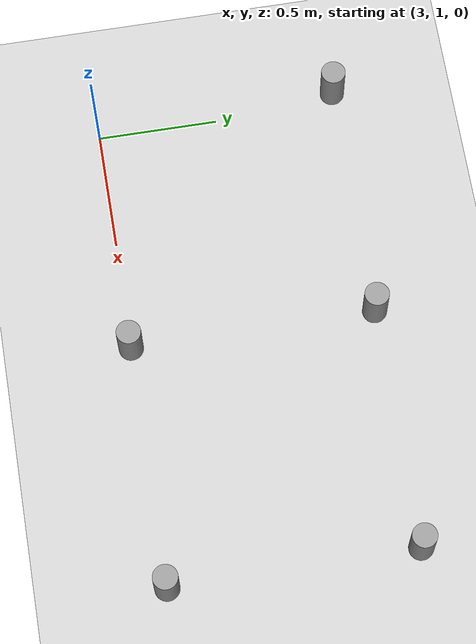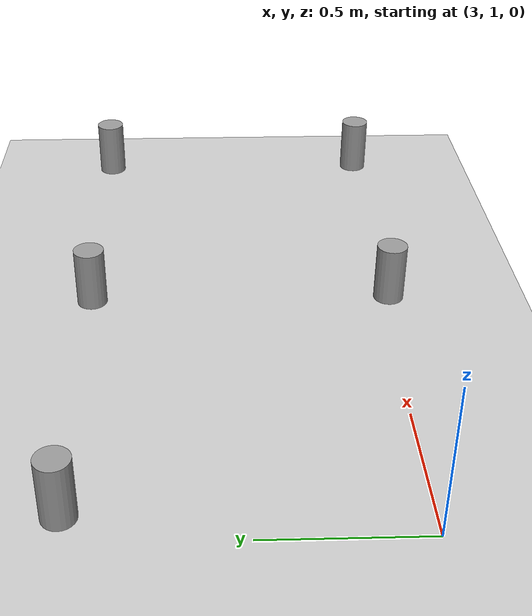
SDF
<sdf version="1.6">
 <world name="default">
  <model name="ground_plane">
   <static>1</static>
   <link name="link">
    <collision name="collision">
     <geometry><plane><normal>0 0 1</normal><size>100 100</size></plane></geometry>
     <surface><friction><ode><mu>100</mu><mu2>50</mu2></ode></friction></surface>
    </collision>
    <visual name="visual">
     <cast_shadows>0</cast_shadows>
     <geometry><plane><normal>0 0 1</normal><size>100 100</size></plane></geometry>
     <material>
      <script><uri>file://media/materials/scripts/gazebo.material</uri><name>Gazebo/Grey</name></script>
     </material>
    </visual>
   </link>
  </model>
  <model name="agent4">
   <link name="link_0">
    <inertial>
     <mass>1</mass>
     <inertia><ixx>0</ixx><ixy>0</ixy><ixz>0</ixz><iyy>0</iyy><iyz>0</iyz><izz>0</izz></inertia>
    </inertial>
    <visual name="visual">
     <geometry><cylinder><radius>0.05</radius><length>0.2</length></cylinder></geometry>
     <material>
      <lighting>1</lighting>
      <script><uri>file://media/materials/scripts/gazebo.material</uri><name>Gazebo/Grey</name></script>
     </material>
    </visual>
    <collision name="collision">
     <geometry><cylinder><radius>0.05</radius><length>0.2</length></cylinder></geometry>
     <surface>
      <friction>
       <ode><mu>0</mu><mu2>1</mu2><fdir1>0 0 0</fdir1><slip1>0</slip1><slip2>0</slip2></ode>
       <torsional>
        <coefficient>1</coefficient>
        <patch_radius>0</patch_radius>
        <surface_radius>0</surface_radius>
        <use_patch_radius>1</use_patch_radius>
        <ode><slip>0</slip></ode>
       </torsional>
      </friction>
      <bounce><restitution_coefficient>0</restitution_coefficient><threshold>1e+06</threshold></bounce>
      <contact>
       <collide_without_contact>0</collide_without_contact>
       <collide_without_contact_bitmask>1</collide_without_contact_bitmask>
       <collide_bitmask>1</collide_bitmask>
       <ode>
        <soft_cfm>0</soft_cfm>
        <soft_erp>0.2</soft_erp>
        <kp>1e+13</kp>
        <kd>1</kd>
        <max_vel>0.01</max_vel>
        <min_depth>0</min_depth>
       </ode>
       <bullet>
        <split_impulse>1</split_impulse>
        <split_impulse_penetration_threshold>-0.01</split_impulse_penetration_threshold>
        <soft_cfm>0</soft_cfm>
        <soft_erp>0.2</soft_erp>
        <kp>1e+13</kp>
        <kd>1</kd>
       </bullet>
      </contact>
     </surface>
    </collision>
   </link>
   <static>0</static>
   <plugin name="multi_obs" filename="libmulti_obs.so"/>
   <pose>4 1 0.19999 -0 -0 -0</pose>
  </model>
  <model name="agent5">
   <link name="link_0">
    <inertial>
     <mass>1</mass>
     <inertia><ixx>0</ixx><ixy>0</ixy><ixz>0</ixz><iyy>0</iyy><iyz>0</iyz><izz>0</izz></inertia>
    </inertial>
    <visual name="visual">
     <geometry><cylinder><radius>0.05</radius><length>0.2</length></cylinder></geometry>
     <material>
      <lighting>1</lighting>
      <script><uri>file://media/materials/scripts/gazebo.material</uri><name>Gazebo/Grey</name></script>
     </material>
    </visual>
    <collision name="collision">
     <geometry><cylinder><radius>0.05</radius><length>0.2</length></cylinder></geometry>
     <surface>
      <friction>
       <ode><mu>0</mu><mu2>1</mu2><fdir1>0 0 0</fdir1><slip1>0</slip1><slip2>0</slip2></ode>
       <torsional>
        <coefficient>1</coefficient>
        <patch_radius>0</patch_radius>
        <surface_radius>0</surface_radius>
        <use_patch_radius>1</use_patch_radius>
        <ode><slip>0</slip></ode>
       </torsional>
      </friction>
      <bounce><restitution_coefficient>0</restitution_coefficient><threshold>1e+06</threshold></bounce>
      <contact>
       <collide_without_contact>0</collide_without_contact>
       <collide_without_contact_bitmask>1</collide_without_contact_bitmask>
       <collide_bitmask>1</collide_bitmask>
       <ode>
        <soft_cfm>0</soft_cfm>
        <soft_erp>0.2</soft_erp>
        <kp>1e+13</kp>
        <kd>1</kd>
        <max_vel>0.01</max_vel>
        <min_depth>0</min_depth>
       </ode>
       <bullet>
        <split_impulse>1</split_impulse>
        <split_impulse_penetration_threshold>-0.01</split_impulse_penetration_threshold>
        <soft_cfm>0</soft_cfm>
        <soft_erp>0.2</soft_erp>
        <kp>1e+13</kp>
        <kd>1</kd>
       </bullet>
      </contact>
     </surface>
    </collision>
   </link>
   <static>0</static>
   <plugin name="multi_obs" filename="libmulti_obs.so"/>
   <pose>5 1 0.19999 -0 -0 -0</pose>
  </model>
  <model name="agent13">
   <link name="link_0">
    <inertial>
     <mass>1</mass>
     <inertia><ixx>0</ixx><ixy>0</ixy><ixz>0</ixz><iyy>0</iyy><iyz>0</iyz><izz>0</izz></inertia>
    </inertial>
    <visual name="visual">
     <geometry><cylinder><radius>0.05</radius><length>0.2</length></cylinder></geometry>
     <material>
      <lighting>1</lighting>
      <script><uri>file://media/materials/scripts/gazebo.material</uri><name>Gazebo/Grey</name></script>
     </material>
    </visual>
    <collision name="collision">
     <geometry><cylinder><radius>0.05</radius><length>0.2</length></cylinder></geometry>
     <surface>
      <friction>
       <ode><mu>0</mu><mu2>1</mu2><fdir1>0 0 0</fdir1><slip1>0</slip1><slip2>0</slip2></ode>
       <torsional>
        <coefficient>1</coefficient>
        <patch_radius>0</patch_radius>
        <surface_radius>0</surface_radius>
        <use_patch_radius>1</use_patch_radius>
        <ode><slip>0</slip></ode>
       </torsional>
      </friction>
      <bounce><restitution_coefficient>0</restitution_coefficient><threshold>1e+06</threshold></bounce>
      <contact>
       <collide_without_contact>0</collide_without_contact>
       <collide_without_contact_bitmask>1</collide_without_contact_bitmask>
       <collide_bitmask>1</collide_bitmask>
       <ode>
        <soft_cfm>0</soft_cfm>
        <soft_erp>0.2</soft_erp>
        <kp>1e+13</kp>
        <kd>1</kd>
        <max_vel>0.01</max_vel>
        <min_depth>0</min_depth>
       </ode>
       <bullet>
        <split_impulse>1</split_impulse>
        <split_impulse_penetration_threshold>-0.01</split_impulse_penetration_threshold>
        <soft_cfm>0</soft_cfm>
        <soft_erp>0.2</soft_erp>
        <kp>1e+13</kp>
        <kd>1</kd>
       </bullet>
      </contact>
     </surface>
    </collision>
   </link>
   <static>0</static>
   <plugin name="multi_obs" filename="libmulti_obs.so"/>
   <pose>3 2 0.19999 0 -0 0</pose>
  </model>
  <model name="agent14">
   <link name="link_0">
    <inertial>
     <mass>1</mass>
     <inertia><ixx>0</ixx><ixy>0</ixy><ixz>0</ixz><iyy>0</iyy><iyz>0</iyz><izz>0</izz></inertia>
    </inertial>
    <visual name="visual">
     <geometry><cylinder><radius>0.05</radius><length>0.2</length></cylinder></geometry>
     <material>
      <lighting>1</lighting>
      <script><uri>file://media/materials/scripts/gazebo.material</uri><name>Gazebo/Grey</name></script>
     </material>
    </visual>
    <collision name="collision">
     <geometry><cylinder><radius>0.05</radius><length>0.2</length></cylinder></geometry>
     <surface>
      <friction>
       <ode><mu>0</mu><mu2>1</mu2><fdir1>0 0 0</fdir1><slip1>0</slip1><slip2>0</slip2></ode>
       <torsional>
        <coefficient>1</coefficient>
        <patch_radius>0</patch_radius>
        <surface_radius>0</surface_radius>
        <use_patch_radius>1</use_patch_radius>
        <ode><slip>0</slip></ode>
       </torsional>
      </friction>
      <bounce><restitution_coefficient>0</restitution_coefficient><threshold>1e+06</threshold></bounce>
      <contact>
       <collide_without_contact>0</collide_without_contact>
       <collide_without_contact_bitmask>1</collide_without_contact_bitmask>
       <collide_bitmask>1</collide_bitmask>
       <ode>
        <soft_cfm>0</soft_cfm>
        <soft_erp>0.2</soft_erp>
        <kp>1e+13</kp>
        <kd>1</kd>
        <max_vel>0.01</max_vel>
        <min_depth>0</min_depth>
       </ode>
       <bullet>
        <split_impulse>1</split_impulse>
        <split_impulse_penetration_threshold>-0.01</split_impulse_penetration_threshold>
        <soft_cfm>0</soft_cfm>
        <soft_erp>0.2</soft_erp>
        <kp>1e+13</kp>
        <kd>1</kd>
       </bullet>
      </contact>
     </surface>
    </collision>
   </link>
   <static>0</static>
   <plugin name="multi_obs" filename="libmulti_obs.so"/>
   <pose>4 2 0.19999 0 -0 0</pose>
  </model>
  <model name="agent15">
   <link name="link_0">
    <inertial>
     <mass>1</mass>
     <inertia><ixx>0</ixx><ixy>0</ixy><ixz>0</ixz><iyy>0</iyy><iyz>0</iyz><izz>0</izz></inertia>
    </inertial>
    <visual name="visual">
     <geometry><cylinder><radius>0.05</radius><length>0.2</length></cylinder></geometry>
     <material>
      <lighting>1</lighting>
      <script><uri>file://media/materials/scripts/gazebo.material</uri><name>Gazebo/Grey</name></script>
     </material>
    </visual>
    <collision name="collision">
     <geometry><cylinder><radius>0.05</radius><length>0.2</length></cylinder></geometry>
     <surface>
      <friction>
       <ode><mu>0</mu><mu2>1</mu2><fdir1>0 0 0</fdir1><slip1>0</slip1><slip2>0</slip2></ode>
       <torsional>
        <coefficient>1</coefficient>
        <patch_radius>0</patch_radius>
        <surface_radius>0</surface_radius>
        <use_patch_radius>1</use_patch_radius>
        <ode><slip>0</slip></ode>
       </torsional>
      </friction>
      <bounce><restitution_coefficient>0</restitution_coefficient><threshold>1e+06</threshold></bounce>
      <contact>
       <collide_without_contact>0</collide_without_contact>
       <collide_without_contact_bitmask>1</collide_without_contact_bitmask>
       <collide_bitmask>1</collide_bitmask>
       <ode>
        <soft_cfm>0</soft_cfm>
        <soft_erp>0.2</soft_erp>
        <kp>1e+13</kp>
        <kd>1</kd>
        <max_vel>0.01</max_vel>
        <min_depth>0</min_depth>
       </ode>
       <bullet>
        <split_impulse>1</split_impulse>
        <split_impulse_penetration_threshold>-0.01</split_impulse_penetration_threshold>
        <soft_cfm>0</soft_cfm>
        <soft_erp>0.2</soft_erp>
        <kp>1e+13</kp>
        <kd>1</kd>
       </bullet>
      </contact>
     </surface>
    </collision>
   </link>
   <static>0</static>
   <plugin name="multi_obs" filename="libmulti_obs.so"/>
   <pose>5 2 0.19999 0 -0 0</pose>
  </model>
 </world>
</sdf>
